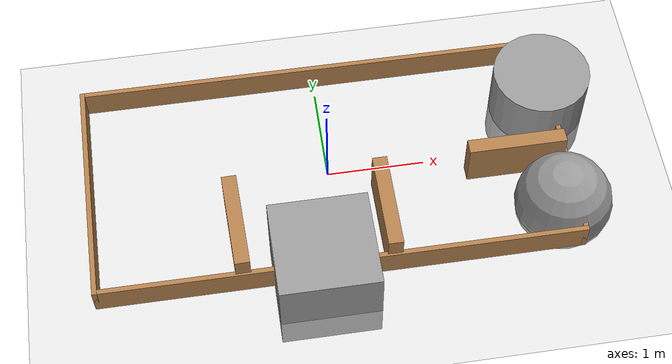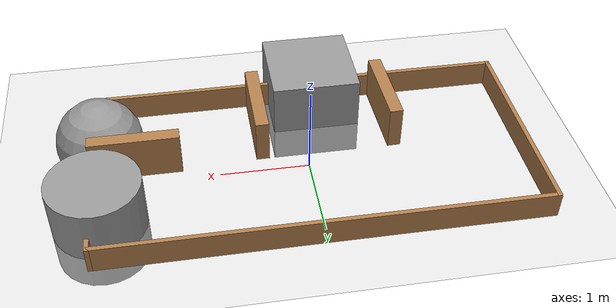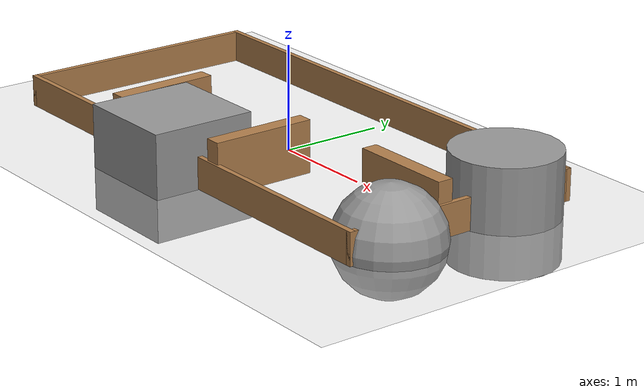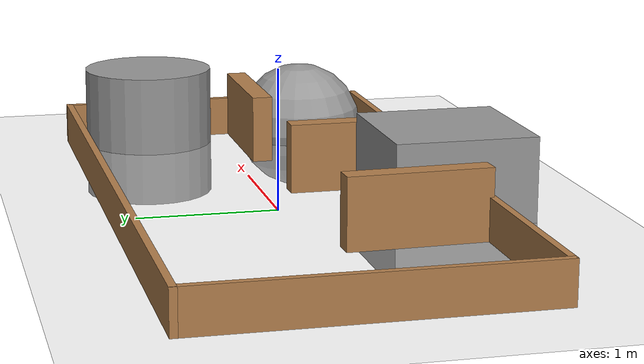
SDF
<sdf version="1.6">
 <world name="default">
  <light name="sun" type="directional">
   <pose>0 0 10 0 -0 0</pose>
   <diffuse>0.8 0.8 0.8 1</diffuse>
   <specular>0.2 0.2 0.2 1</specular>
   <attenuation>
    <range>1000</range>
    <constant>0.9</constant>
    <linear>0.01</linear>
    <quadratic>0.001</quadratic>
   </attenuation>
   <direction>-0.5 0.1 -0.9</direction>
  </light>
  <model name="ground_plane">
   <static>1</static>
   <link name="link">
    <collision name="collision">
     <geometry><plane><normal>0 0 1</normal><size>100 100</size></plane></geometry>
     <surface>
      <contact><collide_bitmask>65535</collide_bitmask></contact>
      <friction><ode><mu>100</mu><mu2>50</mu2></ode></friction>
     </surface>
    </collision>
    <visual name="visual">
     <cast_shadows>0</cast_shadows>
     <geometry><plane><normal>0 0 1</normal><size>100 100</size></plane></geometry>
     <material>
      <script><uri>file://media/materials/scripts/gazebo.material</uri><name>Gazebo/Grey</name></script>
     </material>
    </visual>
   </link>
  </model>
  <gravity>0 0 -9.8</gravity>
  <magnetic_field>6e-06 2.3e-05 -4.2e-05</magnetic_field>
  <atmosphere type="adiabatic"/>
  <physics name="default_physics" default="0" type="ode">
   <max_step_size>0.001</max_step_size>
   <real_time_factor>1</real_time_factor>
   <real_time_update_rate>1000</real_time_update_rate>
  </physics>
  <scene><ambient>0.4 0.4 0.4 1</ambient><background>0.7 0.7 0.7 1</background><shadows>1</shadows></scene>
  <audio><device>default</device></audio>
  <spherical_coordinates>
   <surface_model>EARTH_WGS84</surface_model>
   <latitude_deg>0</latitude_deg>
   <longitude_deg>0</longitude_deg>
   <elevation>0</elevation>
   <heading_deg>0</heading_deg>
  </spherical_coordinates>
  <model name="Hospital">
   <pose>-0.010336 -0.01365 0 0 -0 0</pose>
   <link name="Wall_1">
    <collision name="Wall_1_Collision">
     <geometry><box><size>4.9 0.05 0.3</size></box></geometry>
     <pose>0 0 0.15 0 -0 0</pose>
    </collision>
    <visual name="Wall_1_Visual">
     <pose>0 0 0.15 0 -0 0</pose>
     <geometry><box><size>4.9 0.05 0.3</size></box></geometry>
     <material>
      <script><uri>file://media/materials/scripts/gazebo.material</uri><name>Gazebo/Wood</name></script>
      <ambient>1 1 1 1</ambient>
     </material>
     <meta><layer>0</layer></meta>
    </visual>
    <pose>-0 1.175 0 0 -0 3.14159</pose>
   </link>
   <link name="Wall_2">
    <collision name="Wall_2_Collision">
     <geometry><box><size>2.4 0.05 0.3</size></box></geometry>
     <pose>0 0 0.15 0 -0 0</pose>
    </collision>
    <visual name="Wall_2_Visual">
     <pose>0 0 0.15 0 -0 0</pose>
     <geometry><box><size>2.4 0.05 0.3</size></box></geometry>
     <material>
      <script><uri>file://media/materials/scripts/gazebo.material</uri><name>Gazebo/Wood</name></script>
      <ambient>1 1 1 1</ambient>
     </material>
     <meta><layer>0</layer></meta>
    </visual>
    <pose>-2.425 0 0 0 -0 -1.5708</pose>
   </link>
   <link name="Wall_3">
    <collision name="Wall_3_Collision">
     <geometry><box><size>4.9 0.05 0.3</size></box></geometry>
     <pose>0 0 0.15 0 -0 0</pose>
    </collision>
    <visual name="Wall_3_Visual">
     <pose>0 0 0.15 0 -0 0</pose>
     <geometry><box><size>4.9 0.05 0.3</size></box></geometry>
     <material>
      <script><uri>file://media/materials/scripts/gazebo.material</uri><name>Gazebo/Wood</name></script>
      <ambient>1 1 1 1</ambient>
     </material>
     <meta><layer>0</layer></meta>
    </visual>
    <pose>-0 -1.175 0 0 -0 0</pose>
   </link>
   <link name="Wall_4">
    <collision name="Wall_4_Collision">
     <geometry><box><size>2.4 0.05 0.3</size></box></geometry>
     <pose>0 0 0.15 0 -0 0</pose>
    </collision>
    <visual name="Wall_4_Visual">
     <pose>0 0 0.15 0 -0 0</pose>
     <geometry><box><size>2.4 0.05 0.3</size></box></geometry>
     <material>
      <script><uri>file://media/materials/scripts/gazebo.material</uri><name>Gazebo/Wood</name></script>
      <ambient>1 1 1 1</ambient>
     </material>
     <meta><layer>0</layer></meta>
    </visual>
    <pose>2.425 0 0 0 -0 1.5708</pose>
   </link>
   <static>1</static>
  </model>
  <model name="wall1m">
   <pose>1.91097 -0.199987 0 0 -0 0</pose>
   <link name="Wall_0">
    <collision name="Wall_0_Collision">
     <geometry><box><size>1 0.15 0.5</size></box></geometry>
     <pose>0 0 0.25 0 -0 0</pose>
    </collision>
    <visual name="Wall_0_Visual">
     <pose>0 0 0.25 0 -0 0</pose>
     <geometry><box><size>1 0.15 0.5</size></box></geometry>
     <material>
      <script><uri>file://media/materials/scripts/gazebo.material</uri><name>Gazebo/Wood</name></script>
      <ambient>1 1 1 1</ambient>
     </material>
     <meta><layer>0</layer></meta>
    </visual>
   </link>
   <static>1</static>
  </model>
  <model name="wall1m_0">
   <pose>-1.00693 -0.691945 0 0 0 -1.54196</pose>
   <link name="Wall_0">
    <collision name="Wall_0_Collision">
     <geometry><box><size>1 0.15 0.5</size></box></geometry>
     <pose>0 0 0.25 0 -0 0</pose>
    </collision>
    <visual name="Wall_0_Visual">
     <pose>0 0 0.25 0 -0 0</pose>
     <geometry><box><size>1 0.15 0.5</size></box></geometry>
     <material>
      <script><uri>file://media/materials/scripts/gazebo.material</uri><name>Gazebo/Wood</name></script>
      <ambient>1 1 1 1</ambient>
     </material>
     <meta><layer>0</layer></meta>
    </visual>
   </link>
   <static>1</static>
  </model>
  <model name="wall1m_1">
   <pose>0.500711 -0.692166 0 0 -0 1.57403</pose>
   <link name="Wall_0">
    <collision name="Wall_0_Collision">
     <geometry><box><size>1 0.15 0.5</size></box></geometry>
     <pose>0 0 0.25 0 -0 0</pose>
    </collision>
    <visual name="Wall_0_Visual">
     <pose>0 0 0.25 0 -0 0</pose>
     <geometry><box><size>1 0.15 0.5</size></box></geometry>
     <material>
      <script><uri>file://media/materials/scripts/gazebo.material</uri><name>Gazebo/Wood</name></script>
      <ambient>1 1 1 1</ambient>
     </material>
     <meta><layer>0</layer></meta>
    </visual>
   </link>
   <static>1</static>
  </model>
  <model name="unit_box">
   <pose>-0.192835 -1.14012 0.093854 1e-06 3e-06 -3.3e-05</pose>
   <link name="link">
    <inertial>
     <mass>1</mass>
     <inertia>
      <ixx>0.166667</ixx>
      <ixy>0</ixy>
      <ixz>0</ixz>
      <iyy>0.166667</iyy>
      <iyz>0</iyz>
      <izz>0.166667</izz>
     </inertia>
    </inertial>
    <collision name="collision"><geometry><box><size>0.999995 1 0.999997</size></box></geometry></collision>
    <visual name="visual">
     <geometry><box><size>0.999995 1 0.999997</size></box></geometry>
     <material>
      <script><name>Gazebo/Grey</name><uri>file://media/materials/scripts/gazebo.material</uri></script>
     </material>
    </visual>
   </link>
  </model>
  <model name="unit_sphere">
   <pose>2.31966 -0.709143 0.069023 -0.017823 -0.014453 0</pose>
   <link name="link">
    <inertial>
     <mass>1</mass>
     <inertia><ixx>0.1</ixx><ixy>0</ixy><ixz>0</ixz><iyy>0.1</iyy><iyz>0</iyz><izz>0.1</izz></inertia>
    </inertial>
    <collision name="collision"><geometry><sphere><radius>0.5</radius></sphere></geometry></collision>
    <visual name="visual">
     <geometry><sphere><radius>0.5</radius></sphere></geometry>
     <material>
      <script><name>Gazebo/Grey</name><uri>file://media/materials/scripts/gazebo.material</uri></script>
     </material>
    </visual>
   </link>
  </model>
  <model name="unit_cylinder">
   <pose>2.31853 0.540174 0.09227 0 -0 4.2e-05</pose>
   <link name="link">
    <inertial>
     <mass>1</mass>
     <inertia><ixx>0.145833</ixx><ixy>0</ixy><ixz>0</ixz><iyy>0.145833</iyy><iyz>0</iyz><izz>0.125</izz></inertia>
    </inertial>
    <collision name="collision">
     <geometry><cylinder><radius>0.499998</radius><length>1</length></cylinder></geometry>
    </collision>
    <visual name="visual">
     <geometry><cylinder><radius>0.499998</radius><length>1</length></cylinder></geometry>
     <material>
      <script><name>Gazebo/Grey</name><uri>file://media/materials/scripts/gazebo.material</uri></script>
     </material>
    </visual>
   </link>
  </model>
 </world>
</sdf>
